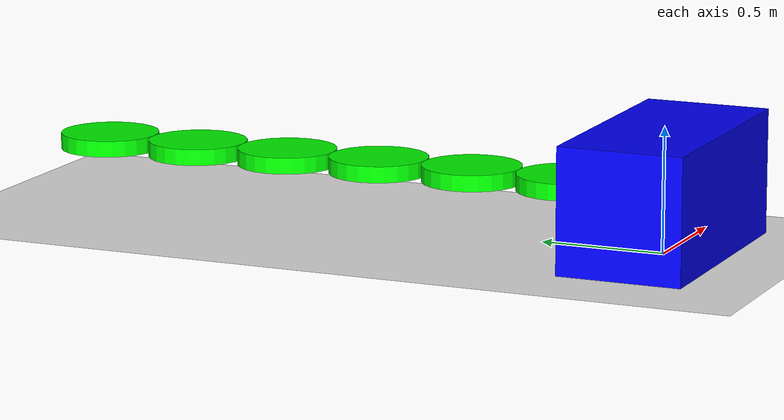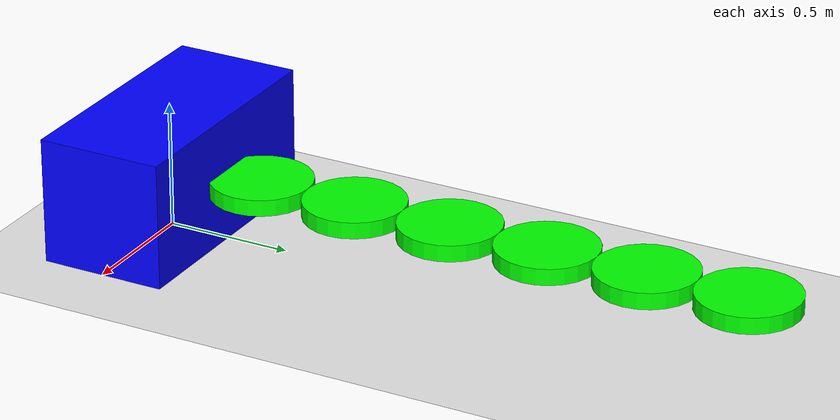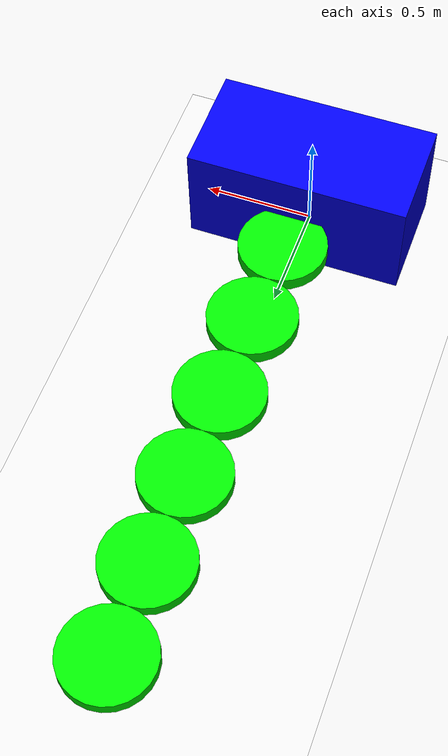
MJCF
<mujoco><worldbody><light diffuse=".5 .5 .5" pos="0 0 3" dir="0 0 -1" /><geom name="ground" type="plane" size="5 5 0.1" rgba=".9 .9 .9 1" /><body name="body"><freejoint name="root" /><geom name="torso" type="box" size="0.5 0.25 0.25" pos="0 0 0.25" rgba="0 0 1 1" mass="0.1" /><body name="wing0" pos="0 0.4 0.25" euler="0 0 90"><joint name="wing0link" type="hinge" axis="0 0 1" range="-1 1" /><geom name="wing0" type="cylinder" size="0.2 0.0325" pos="0 0 0" rgba="0 1 0 1" mass="1" /><body name="wing1" euler="0 0 0"><body name="wing2" euler="0 0 0"><body name="wing3" euler="0 0 0"><body name="wing4" euler="0 0 0"><body name="wing5" euler="0 0 0" /><joint name="wing5link" type="hinge" pos="0 0 0" axis="1 0 0" range="-29 29" /><geom name="wing5" type="cylinder" size="0.2 0.0325" pos="2.0 0 0" rgba="0 1 0 1" mass="1.5" /></body><joint name="wing4link" type="hinge" pos="0 0 0" axis="1 0 0" range="-55 55" /><geom name="wing4" type="cylinder" size="0.2 0.0325" pos="1.6 0 0" rgba="0 1 0 1" mass="1.5" /></body><joint name="wing3link" type="hinge" pos="0 0 0" axis="1 0 0" range="-23 23" /><geom name="wing3" type="cylinder" size="0.2 0.0325" pos="1.2000000000000002 0 0" rgba="0 1 0 1" mass="1.5" /></body><joint name="wing2link" type="hinge" pos="0 0 0" axis="1 0 0" range="-32 32" /><geom name="wing2" type="cylinder" size="0.2 0.0325" pos="0.8 0 0" rgba="0 1 0 1" mass="1.5" /></body><joint name="wing1link" type="hinge" pos="0 0 0" axis="1 0 0" range="-79 79" /><geom name="wing1" type="cylinder" size="0.2 0.0325" pos="0.4 0 0" rgba="0 1 0 1" mass="1.5" /></body></body></worldbody><actuator><motor name="wing0m" joint="wing0link" gear="88" ctrllimited="true" ctrlrange="-5 5" /><motor name="wing1m" joint="wing1link" gear="28" ctrllimited="true" ctrlrange="-5 5" /><motor name="wing2m" joint="wing2link" gear="31" ctrllimited="true" ctrlrange="-5 5" /><motor name="wing3m" joint="wing3link" gear="8" ctrllimited="true" ctrlrange="-5 5" /><motor name="wing4m" joint="wing4link" gear="34" ctrllimited="true" ctrlrange="-5 5" /><motor name="wing5m" joint="wing5link" gear="94" ctrllimited="true" ctrlrange="-5 5" /></actuator></mujoco>
